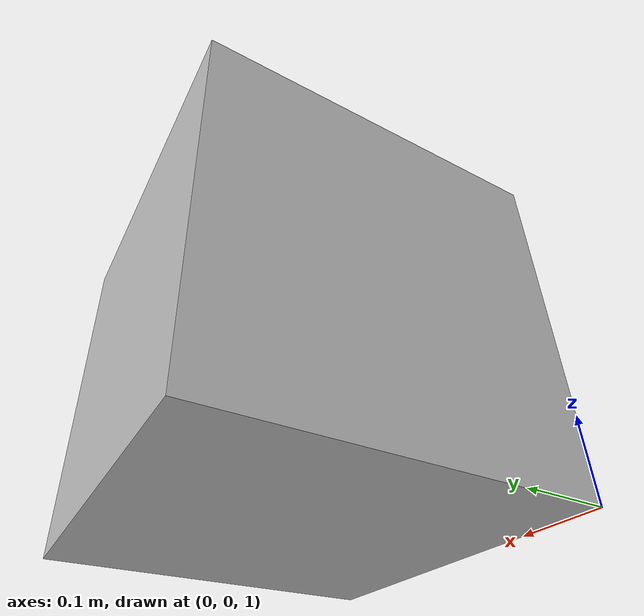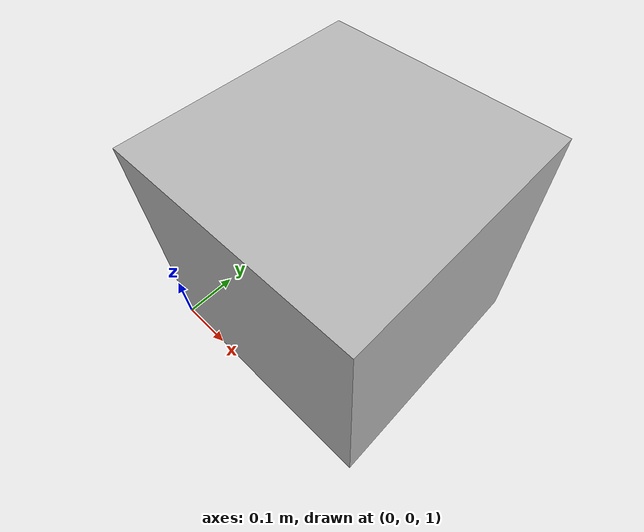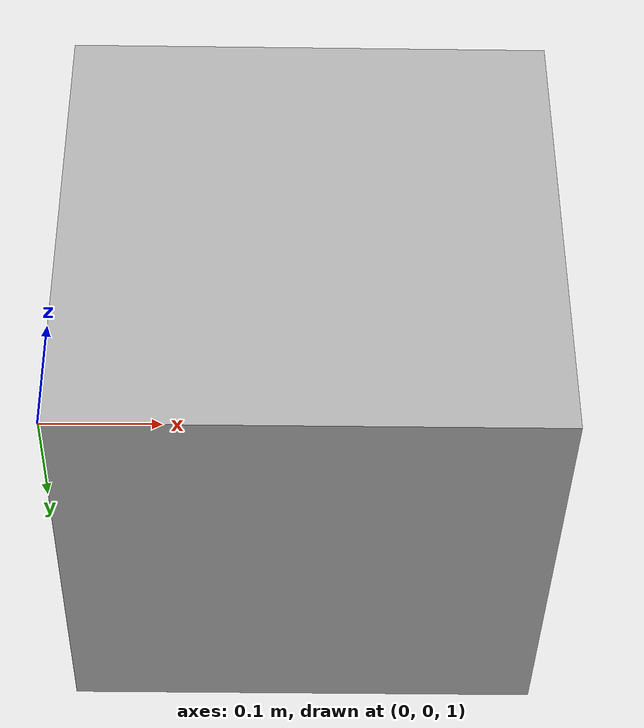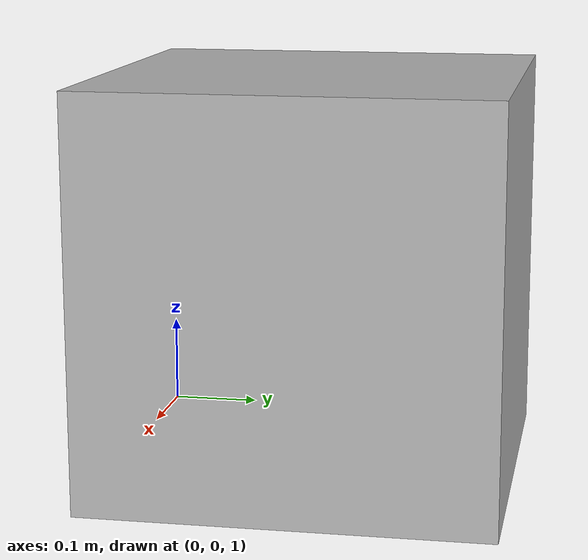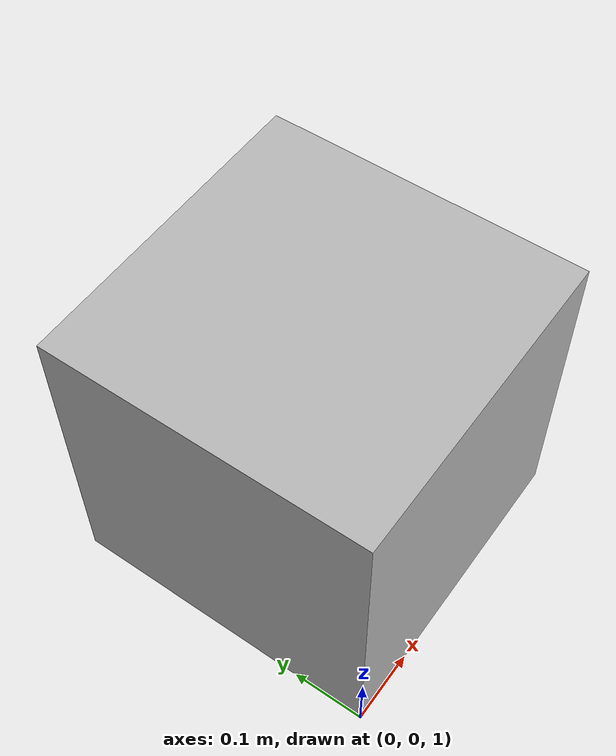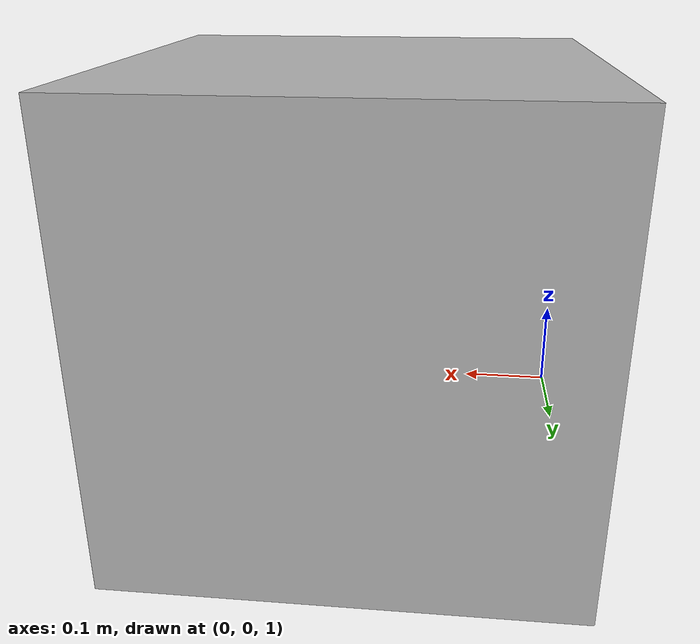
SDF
<?xml version="1.0" ?>
<sdf version='1.5'>
  <model name="landing_box">
    <pose>0 0 1 0 0 0</pose>
    <static>true</static>
    <link name="link">
      <collision name="collision">
        <geometry>
          <box>
            <size>0.4 0.4 0.4</size>
          </box>
        </geometry>
      </collision>

      <visual name="visual">
        <geometry>
          <mesh>
            <uri>model://landing_box/meshes/mesh.dae</uri>
          </mesh>
        </geometry>
      </visual>
    </link>
  </model>
</sdf>
